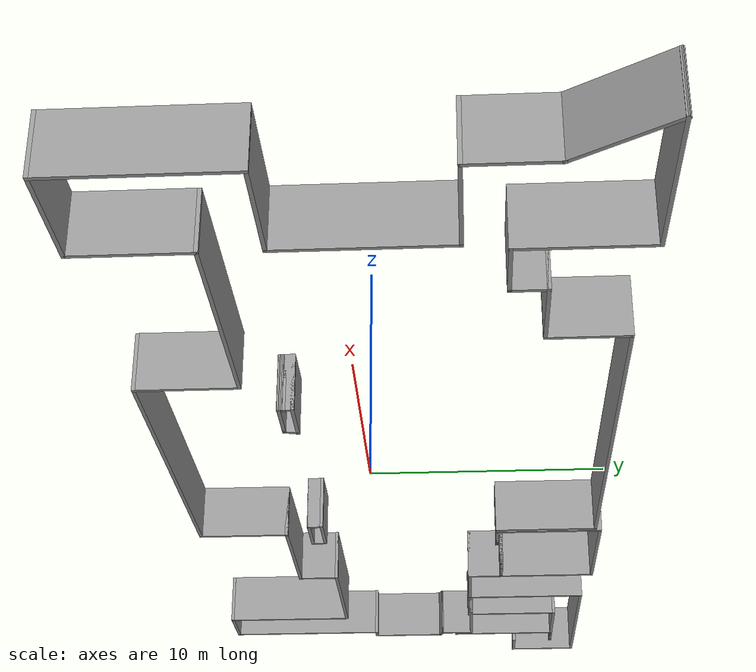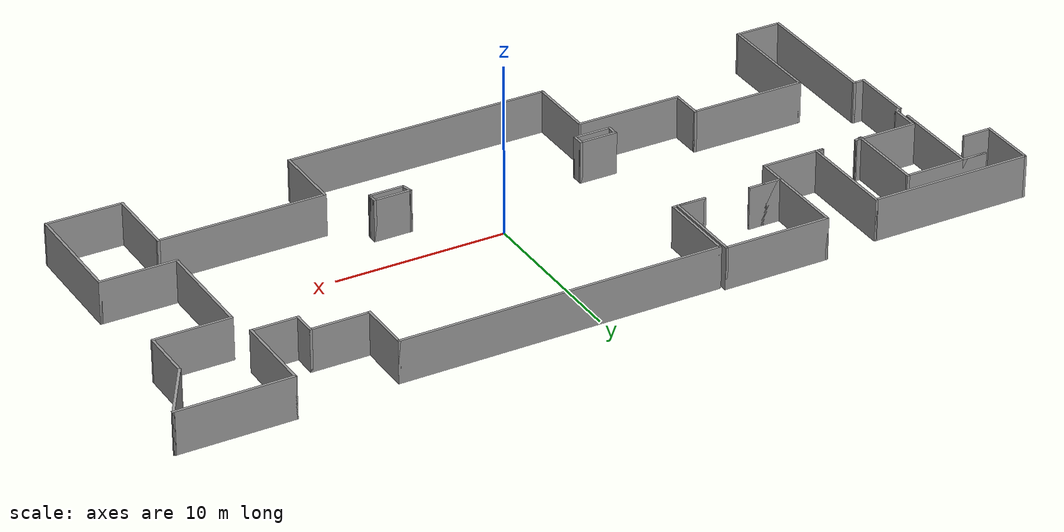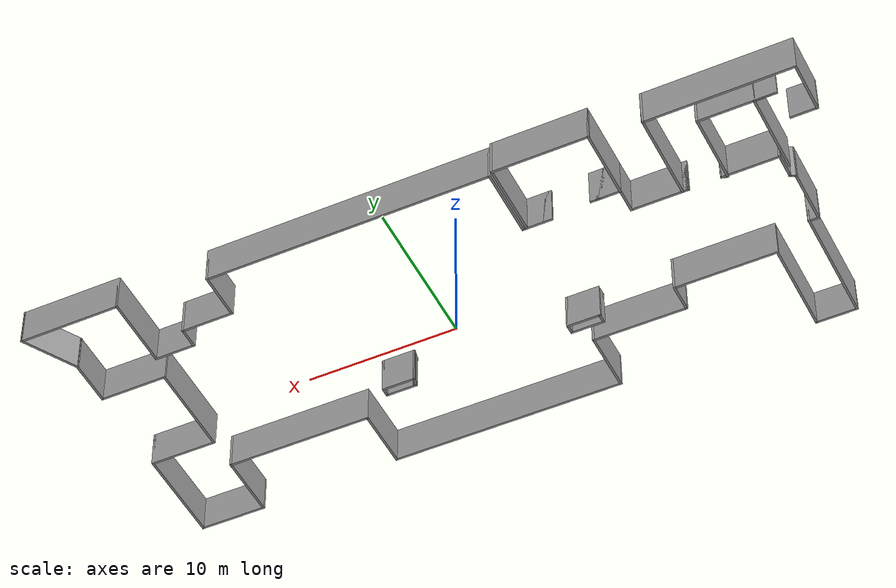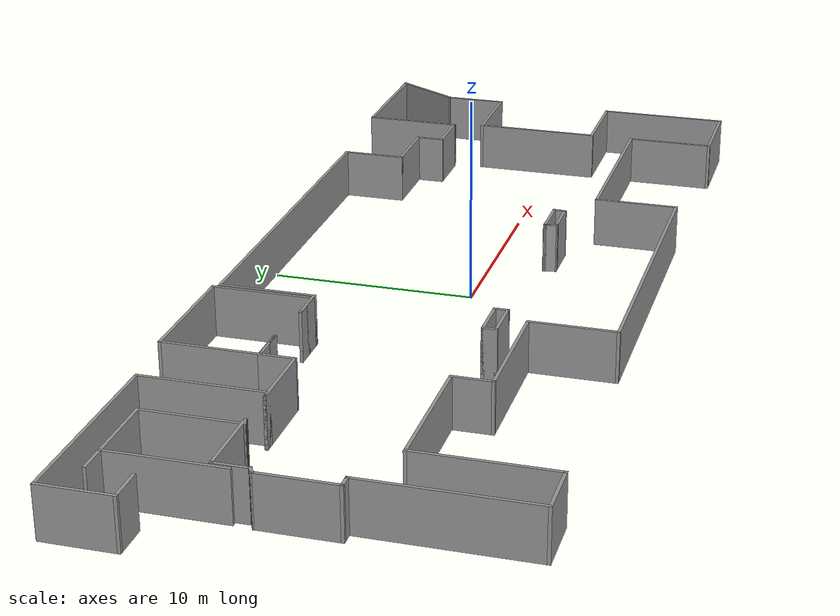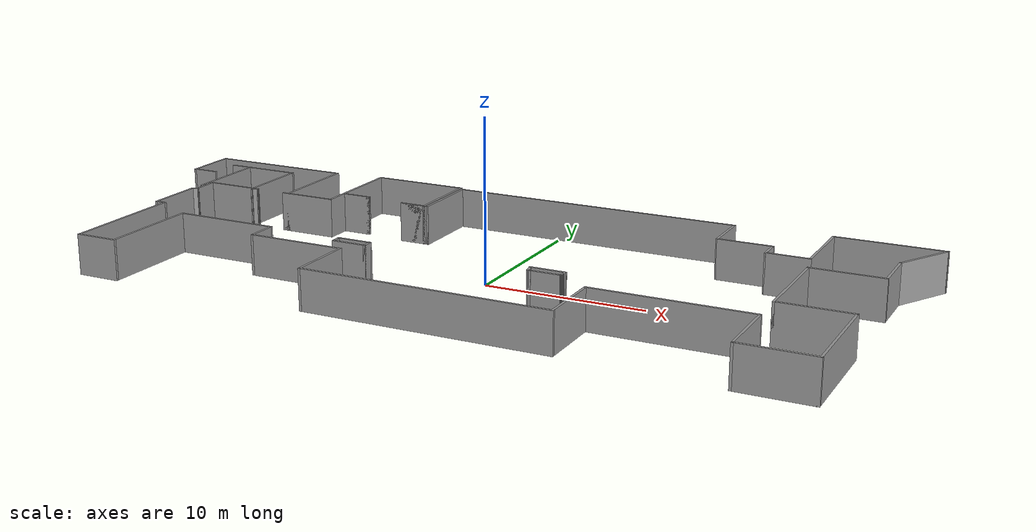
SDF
<?xml version='1.0'?>
<sdf version='1.7'>
  <model name='perch_with_columns'>
    <pose>-0.880574 0.799381 0 0 -0 0</pose>
    <link name='Wall_0'>
      <collision name='Wall_0_Collision'>
        <geometry>
          <box>
            <size>1.75 0.15 2.5</size>
          </box>
        </geometry>
        <pose>0 0 1.25 0 -0 0</pose>
      </collision>
      <visual name='Wall_0_Visual'>
        <pose>0 0 1.25 0 -0 0</pose>
        <geometry>
          <box>
            <size>1.75 0.15 2.5</size>
          </box>
        </geometry>
        <material>
          <script>
            <uri>file://media/materials/scripts/gazebo.material</uri>
            <name>Gazebo/Grey</name>
          </script>
          <ambient>1 1 1 1</ambient>
        </material>
        <meta>
          <layer>0</layer>
        </meta>
      </visual>
      <pose>-24.2637 5.90337 0 0 -0 3.14159</pose>
    </link>
    <link name='Wall_1'>
      <collision name='Wall_1_Collision'>
        <geometry>
          <box>
            <size>3.5 0.15 2.5</size>
          </box>
        </geometry>
        <pose>0 0 1.25 0 -0 0</pose>
      </collision>
      <visual name='Wall_1_Visual'>
        <pose>0 0 1.25 0 -0 0</pose>
        <geometry>
          <box>
            <size>3.5 0.15 2.5</size>
          </box>
        </geometry>
        <material>
          <script>
            <uri>file://media/materials/scripts/gazebo.material</uri>
            <name>Gazebo/Grey</name>
          </script>
          <ambient>1 1 1 1</ambient>
        </material>
        <meta>
          <layer>0</layer>
        </meta>
      </visual>
      <pose>-25.0637 7.57837 0 0 -0 1.5708</pose>
    </link>
    <link name='Wall_10'>
      <collision name='Wall_10_Collision'>
        <geometry>
          <box>
            <size>6.25 0.15 2.5</size>
          </box>
        </geometry>
        <pose>0 0 1.25 0 -0 0</pose>
      </collision>
      <visual name='Wall_10_Visual'>
        <pose>0 0 1.25 0 -0 0</pose>
        <geometry>
          <box>
            <size>6.25 0.15 2.5</size>
          </box>
        </geometry>
        <material>
          <script>
            <uri>file://media/materials/scripts/gazebo.material</uri>
            <name>Gazebo/Grey</name>
          </script>
          <ambient>1 1 1 1</ambient>
        </material>
        <meta>
          <layer>0</layer>
        </meta>
      </visual>
      <pose>-9.41372 9.60337 0 0 -0 0</pose>
    </link>
    <link name='Wall_11'>
      <collision name='Wall_11_Collision'>
        <geometry>
          <box>
            <size>5 0.15 2.5</size>
          </box>
        </geometry>
        <pose>0 0 1.25 0 -0 0</pose>
      </collision>
      <visual name='Wall_11_Visual'>
        <pose>0 0 1.25 0 -0 0</pose>
        <geometry>
          <box>
            <size>5 0.15 2.5</size>
          </box>
        </geometry>
        <material>
          <script>
            <uri>file://media/materials/scripts/gazebo.material</uri>
            <name>Gazebo/Grey</name>
          </script>
          <ambient>1 1 1 1</ambient>
        </material>
        <meta>
          <layer>0</layer>
        </meta>
      </visual>
      <pose>-6.36372 7.17837 0 0 -0 -1.5708</pose>
    </link>
    <link name='Wall_12'>
      <collision name='Wall_12_Collision'>
        <geometry>
          <box>
            <size>1.75 0.15 2.5</size>
          </box>
        </geometry>
        <pose>0 0 1.25 0 -0 0</pose>
      </collision>
      <visual name='Wall_12_Visual'>
        <pose>0 0 1.25 0 -0 0</pose>
        <geometry>
          <box>
            <size>1.75 0.15 2.5</size>
          </box>
        </geometry>
        <material>
          <script>
            <uri>file://media/materials/scripts/gazebo.material</uri>
            <name>Gazebo/Grey</name>
          </script>
          <ambient>1 1 1 1</ambient>
        </material>
        <meta>
          <layer>0</layer>
        </meta>
      </visual>
      <pose>-7.16373 4.75337 0 0 -0 3.14159</pose>
    </link>
    <link name='Wall_13'>
      <collision name='Wall_13_Collision'>
        <geometry>
          <box>
            <size>2 0.15 2.5</size>
          </box>
        </geometry>
        <pose>0 0 1.25 0 -0 0</pose>
      </collision>
      <visual name='Wall_13_Visual'>
        <pose>0 0 1.25 0 -0 0</pose>
        <geometry>
          <box>
            <size>2 0.15 2.5</size>
          </box>
        </geometry>
        <material>
          <script>
            <uri>file://media/materials/scripts/gazebo.material</uri>
            <name>Gazebo/Grey</name>
          </script>
          <ambient>1 1 1 1</ambient>
        </material>
        <meta>
          <layer>0</layer>
        </meta>
      </visual>
      <pose>-7.03873 4.75337 0 0 -0 0</pose>
    </link>
    <link name='Wall_14'>
      <collision name='Wall_14_Collision'>
        <geometry>
          <box>
            <size>4.75 0.15 2.5</size>
          </box>
        </geometry>
        <pose>0 0 1.25 0 -0 0</pose>
      </collision>
      <visual name='Wall_14_Visual'>
        <pose>0 0 1.25 0 -0 0</pose>
        <geometry>
          <box>
            <size>4.75 0.15 2.5</size>
          </box>
        </geometry>
        <material>
          <script>
            <uri>file://media/materials/scripts/gazebo.material</uri>
            <name>Gazebo/Grey</name>
          </script>
          <ambient>1 1 1 1</ambient>
        </material>
        <meta>
          <layer>0</layer>
        </meta>
      </visual>
      <pose>-6.11372 7.05337 0 0 -0 1.5708</pose>
    </link>
    <link name='Wall_15'>
      <collision name='Wall_15_Collision'>
        <geometry>
          <box>
            <size>18.75 0.15 2.5</size>
          </box>
        </geometry>
        <pose>0 0 1.25 0 -0 0</pose>
      </collision>
      <visual name='Wall_15_Visual'>
        <pose>0 0 1.25 0 -0 0</pose>
        <geometry>
          <box>
            <size>18.75 0.15 2.5</size>
          </box>
        </geometry>
        <material>
          <script>
            <uri>file://media/materials/scripts/gazebo.material</uri>
            <name>Gazebo/Grey</name>
          </script>
          <ambient>1 1 1 1</ambient>
        </material>
        <meta>
          <layer>0</layer>
        </meta>
      </visual>
      <pose>3.18628 9.35337 0 0 -0 0</pose>
    </link>
    <link name='Wall_16'>
      <collision name='Wall_16_Collision'>
        <geometry>
          <box>
            <size>3.25 0.15 2.5</size>
          </box>
        </geometry>
        <pose>0 0 1.25 0 -0 0</pose>
      </collision>
      <visual name='Wall_16_Visual'>
        <pose>0 0 1.25 0 -0 0</pose>
        <geometry>
          <box>
            <size>3.25 0.15 2.5</size>
          </box>
        </geometry>
        <material>
          <script>
            <uri>file://media/materials/scripts/gazebo.material</uri>
            <name>Gazebo/Grey</name>
          </script>
          <ambient>1 1 1 1</ambient>
        </material>
        <meta>
          <layer>0</layer>
        </meta>
      </visual>
      <pose>12.4863 7.80337 0 0 -0 -1.5708</pose>
    </link>
    <link name='Wall_17'>
      <collision name='Wall_17_Collision'>
        <geometry>
          <box>
            <size>3.5 0.15 2.5</size>
          </box>
        </geometry>
        <pose>0 0 1.25 0 -0 0</pose>
      </collision>
      <visual name='Wall_17_Visual'>
        <pose>0 0 1.25 0 -0 0</pose>
        <geometry>
          <box>
            <size>3.5 0.15 2.5</size>
          </box>
        </geometry>
        <material>
          <script>
            <uri>file://media/materials/scripts/gazebo.material</uri>
            <name>Gazebo/Grey</name>
          </script>
          <ambient>1 1 1 1</ambient>
        </material>
        <meta>
          <layer>0</layer>
        </meta>
      </visual>
      <pose>14.1613 6.25337 0 0 -0 0</pose>
    </link>
    <link name='Wall_18'>
      <collision name='Wall_18_Collision'>
        <geometry>
          <box>
            <size>1.5 0.15 2.5</size>
          </box>
        </geometry>
        <pose>0 0 1.25 0 -0 0</pose>
      </collision>
      <visual name='Wall_18_Visual'>
        <pose>0 0 1.25 0 -0 0</pose>
        <geometry>
          <box>
            <size>1.5 0.15 2.5</size>
          </box>
        </geometry>
        <material>
          <script>
            <uri>file://media/materials/scripts/gazebo.material</uri>
            <name>Gazebo/Grey</name>
          </script>
          <ambient>1 1 1 1</ambient>
        </material>
        <meta>
          <layer>0</layer>
        </meta>
      </visual>
      <pose>15.8363 5.57837 0 0 -0 -1.5708</pose>
    </link>
    <link name='Wall_19'>
      <collision name='Wall_19_Collision'>
        <geometry>
          <box>
            <size>2.75 0.15 2.5</size>
          </box>
        </geometry>
        <pose>0 0 1.25 0 -0 0</pose>
      </collision>
      <visual name='Wall_19_Visual'>
        <pose>0 0 1.25 0 -0 0</pose>
        <geometry>
          <box>
            <size>2.75 0.15 2.5</size>
          </box>
        </geometry>
        <material>
          <script>
            <uri>file://media/materials/scripts/gazebo.material</uri>
            <name>Gazebo/Grey</name>
          </script>
          <ambient>1 1 1 1</ambient>
        </material>
        <meta>
          <layer>0</layer>
        </meta>
      </visual>
      <pose>17.1363 4.90337 0 0 -0 0</pose>
    </link>
    <link name='Wall_2'>
      <collision name='Wall_2_Collision'>
        <geometry>
          <box>
            <size>9.5 0.15 2.5</size>
          </box>
        </geometry>
        <pose>0 0 1.25 0 -0 0</pose>
      </collision>
      <visual name='Wall_2_Visual'>
        <pose>0 0 1.25 0 -0 0</pose>
        <geometry>
          <box>
            <size>9.5 0.15 2.5</size>
          </box>
        </geometry>
        <material>
          <script>
            <uri>file://media/materials/scripts/gazebo.material</uri>
            <name>Gazebo/Grey</name>
          </script>
          <ambient>1 1 1 1</ambient>
        </material>
        <meta>
          <layer>0</layer>
        </meta>
      </visual>
      <pose>-20.3887 9.25337 0 0 -0 0</pose>
    </link>
    <link name='Wall_20'>
      <collision name='Wall_20_Collision'>
        <geometry>
          <box>
            <size>5 0.15 2.5</size>
          </box>
        </geometry>
        <pose>0 0 1.25 0 -0 0</pose>
      </collision>
      <visual name='Wall_20_Visual'>
        <pose>0 0 1.25 0 -0 0</pose>
        <geometry>
          <box>
            <size>5 0.15 2.5</size>
          </box>
        </geometry>
        <material>
          <script>
            <uri>file://media/materials/scripts/gazebo.material</uri>
            <name>Gazebo/Grey</name>
          </script>
          <ambient>1 1 1 1</ambient>
        </material>
        <meta>
          <layer>0</layer>
        </meta>
      </visual>
      <pose>18.4363 7.32837 0 0 -0 1.5708</pose>
    </link>
    <link name='Wall_21'>
      <collision name='Wall_21_Collision'>
        <geometry>
          <box>
            <size>6.75 0.15 2.5</size>
          </box>
        </geometry>
        <pose>0 0 1.25 0 -0 0</pose>
      </collision>
      <visual name='Wall_21_Visual'>
        <pose>0 0 1.25 0 -0 0</pose>
        <geometry>
          <box>
            <size>6.75 0.15 2.5</size>
          </box>
        </geometry>
        <material>
          <script>
            <uri>file://media/materials/scripts/gazebo.material</uri>
            <name>Gazebo/Grey</name>
          </script>
          <ambient>1 1 1 1</ambient>
        </material>
        <meta>
          <layer>0</layer>
        </meta>
      </visual>
      <pose>21.7363 9.75337 0 0 -0 0</pose>
    </link>
    <link name='Wall_22'>
      <collision name='Wall_22_Collision'>
        <geometry>
          <box>
            <size>4 0.15 2.5</size>
          </box>
        </geometry>
        <pose>0 0 1.25 0 -0 0</pose>
      </collision>
      <visual name='Wall_22_Visual'>
        <pose>0 0 1.25 0 -0 0</pose>
        <geometry>
          <box>
            <size>4 0.15 2.5</size>
          </box>
        </geometry>
        <material>
          <script>
            <uri>file://media/materials/scripts/gazebo.material</uri>
            <name>Gazebo/Grey</name>
          </script>
          <ambient>1 1 1 1</ambient>
        </material>
        <meta>
          <layer>0</layer>
        </meta>
      </visual>
      <pose>24.0738 8.08628 0 0 -0 -2.0944</pose>
    </link>
    <link name='Wall_23'>
      <collision name='Wall_23_Collision'>
        <geometry>
          <box>
            <size>3.25 0.15 2.5</size>
          </box>
        </geometry>
        <pose>0 0 1.25 0 -0 0</pose>
      </collision>
      <visual name='Wall_23_Visual'>
        <pose>0 0 1.25 0 -0 0</pose>
        <geometry>
          <box>
            <size>3.25 0.15 2.5</size>
          </box>
        </geometry>
        <material>
          <script>
            <uri>file://media/materials/scripts/gazebo.material</uri>
            <name>Gazebo/Grey</name>
          </script>
          <ambient>1 1 1 1</ambient>
        </material>
        <meta>
          <layer>0</layer>
        </meta>
      </visual>
      <pose>23.1113 4.86918 0 0 -0 -1.5708</pose>
    </link>
    <link name='Wall_24'>
      <collision name='Wall_24_Collision'>
        <geometry>
          <box>
            <size>4.5 0.15 2.5</size>
          </box>
        </geometry>
        <pose>0 0 1.25 0 -0 0</pose>
      </collision>
      <visual name='Wall_24_Visual'>
        <pose>0 0 1.25 0 -0 0</pose>
        <geometry>
          <box>
            <size>4.5 0.15 2.5</size>
          </box>
        </geometry>
        <material>
          <script>
            <uri>file://media/materials/scripts/gazebo.material</uri>
            <name>Gazebo/Grey</name>
          </script>
          <ambient>1 1 1 1</ambient>
        </material>
        <meta>
          <layer>0</layer>
        </meta>
      </visual>
      <pose>20.9363 3.31918 0 0 -0 3.14159</pose>
    </link>
    <link name='Wall_25'>
      <collision name='Wall_25_Collision'>
        <geometry>
          <box>
            <size>6.5 0.15 2.5</size>
          </box>
        </geometry>
        <pose>0 0 1.25 0 -0 0</pose>
      </collision>
      <visual name='Wall_25_Visual'>
        <pose>0 0 1.25 0 -0 0</pose>
        <geometry>
          <box>
            <size>6.5 0.15 2.5</size>
          </box>
        </geometry>
        <material>
          <script>
            <uri>file://media/materials/scripts/gazebo.material</uri>
            <name>Gazebo/Grey</name>
          </script>
          <ambient>1 1 1 1</ambient>
        </material>
        <meta>
          <layer>0</layer>
        </meta>
      </visual>
      <pose>18.7613 0.144176 0 0 -0 -1.5708</pose>
    </link>
    <link name='Wall_26'>
      <collision name='Wall_26_Collision'>
        <geometry>
          <box>
            <size>4.5 0.15 2.5</size>
          </box>
        </geometry>
        <pose>0 0 1.25 0 -0 0</pose>
      </collision>
      <visual name='Wall_26_Visual'>
        <pose>0 0 1.25 0 -0 0</pose>
        <geometry>
          <box>
            <size>4.5 0.15 2.5</size>
          </box>
        </geometry>
        <material>
          <script>
            <uri>file://media/materials/scripts/gazebo.material</uri>
            <name>Gazebo/Grey</name>
          </script>
          <ambient>1 1 1 1</ambient>
        </material>
        <meta>
          <layer>0</layer>
        </meta>
      </visual>
      <pose>20.9363 -3.03082 0 0 -0 0</pose>
    </link>
    <link name='Wall_27'>
      <collision name='Wall_27_Collision'>
        <geometry>
          <box>
            <size>6.75 0.15 2.5</size>
          </box>
        </geometry>
        <pose>0 0 1.25 0 -0 0</pose>
      </collision>
      <visual name='Wall_27_Visual'>
        <pose>0 0 1.25 0 -0 0</pose>
        <geometry>
          <box>
            <size>6.75 0.15 2.5</size>
          </box>
        </geometry>
        <material>
          <script>
            <uri>file://media/materials/scripts/gazebo.material</uri>
            <name>Gazebo/Grey</name>
          </script>
          <ambient>1 1 1 1</ambient>
        </material>
        <meta>
          <layer>0</layer>
        </meta>
      </visual>
      <pose>23.1113 -6.33082 0 0 -0 -1.5708</pose>
    </link>
    <link name='Wall_28'>
      <collision name='Wall_28_Collision'>
        <geometry>
          <box>
            <size>4.5 0.15 2.5</size>
          </box>
        </geometry>
        <pose>0 0 1.25 0 -0 0</pose>
      </collision>
      <visual name='Wall_28_Visual'>
        <pose>0 0 1.25 0 -0 0</pose>
        <geometry>
          <box>
            <size>4.5 0.15 2.5</size>
          </box>
        </geometry>
        <material>
          <script>
            <uri>file://media/materials/scripts/gazebo.material</uri>
            <name>Gazebo/Grey</name>
          </script>
          <ambient>1 1 1 1</ambient>
        </material>
        <meta>
          <layer>0</layer>
        </meta>
      </visual>
      <pose>20.9363 -9.63082 0 0 -0 3.14159</pose>
    </link>
    <link name='Wall_29'>
      <collision name='Wall_29_Collision'>
        <geometry>
          <box>
            <size>4.5 0.15 2.5</size>
          </box>
        </geometry>
        <pose>0 0 1.25 0 -0 0</pose>
      </collision>
      <visual name='Wall_29_Visual'>
        <pose>0 0 1.25 0 -0 0</pose>
        <geometry>
          <box>
            <size>4.5 0.15 2.5</size>
          </box>
        </geometry>
        <material>
          <script>
            <uri>file://media/materials/scripts/gazebo.material</uri>
            <name>Gazebo/Grey</name>
          </script>
          <ambient>1 1 1 1</ambient>
        </material>
        <meta>
          <layer>0</layer>
        </meta>
      </visual>
      <pose>18.7613 -7.45582 0 0 -0 1.5708</pose>
    </link>
    <link name='Wall_3'>
      <collision name='Wall_3_Collision'>
        <geometry>
          <box>
            <size>6 0.15 2.5</size>
          </box>
        </geometry>
        <pose>0 0 1.25 0 -0 0</pose>
      </collision>
      <visual name='Wall_3_Visual'>
        <pose>0 0 1.25 0 -0 0</pose>
        <geometry>
          <box>
            <size>6 0.15 2.5</size>
          </box>
        </geometry>
        <material>
          <script>
            <uri>file://media/materials/scripts/gazebo.material</uri>
            <name>Gazebo/Grey</name>
          </script>
          <ambient>1 1 1 1</ambient>
        </material>
        <meta>
          <layer>0</layer>
        </meta>
      </visual>
      <pose>-15.7137 6.32837 0 0 -0 -1.5708</pose>
    </link>
    <link name='Wall_30'>
      <collision name='Wall_30_Collision'>
        <geometry>
          <box>
            <size>9.75 0.15 2.5</size>
          </box>
        </geometry>
        <pose>0 0 1.25 0 -0 0</pose>
      </collision>
      <visual name='Wall_30_Visual'>
        <pose>0 0 1.25 0 -0 0</pose>
        <geometry>
          <box>
            <size>9.75 0.15 2.5</size>
          </box>
        </geometry>
        <material>
          <script>
            <uri>file://media/materials/scripts/gazebo.material</uri>
            <name>Gazebo/Grey</name>
          </script>
          <ambient>1 1 1 1</ambient>
        </material>
        <meta>
          <layer>0</layer>
        </meta>
      </visual>
      <pose>13.9613 -5.28082 0 0 -0 3.14159</pose>
    </link>
    <link name='Wall_31'>
      <collision name='Wall_31_Collision'>
        <geometry>
          <box>
            <size>4.25 0.15 2.5</size>
          </box>
        </geometry>
        <pose>0 0 1.25 0 -0 0</pose>
      </collision>
      <visual name='Wall_31_Visual'>
        <pose>0 0 1.25 0 -0 0</pose>
        <geometry>
          <box>
            <size>4.25 0.15 2.5</size>
          </box>
        </geometry>
        <material>
          <script>
            <uri>file://media/materials/scripts/gazebo.material</uri>
            <name>Gazebo/Grey</name>
          </script>
          <ambient>1 1 1 1</ambient>
        </material>
        <meta>
          <layer>0</layer>
        </meta>
      </visual>
      <pose>9.16127 -7.33082 0 0 -0 -1.5708</pose>
    </link>
    <link name='Wall_32'>
      <collision name='Wall_32_Collision'>
        <geometry>
          <box>
            <size>15.5 0.15 2.5</size>
          </box>
        </geometry>
        <pose>0 0 1.25 0 -0 0</pose>
      </collision>
      <visual name='Wall_32_Visual'>
        <pose>0 0 1.25 0 -0 0</pose>
        <geometry>
          <box>
            <size>15.5 0.15 2.5</size>
          </box>
        </geometry>
        <material>
          <script>
            <uri>file://media/materials/scripts/gazebo.material</uri>
            <name>Gazebo/Grey</name>
          </script>
          <ambient>1 1 1 1</ambient>
        </material>
        <meta>
          <layer>0</layer>
        </meta>
      </visual>
      <pose>1.48628 -9.38082 0 0 -0 3.14159</pose>
    </link>
    <link name='Wall_33'>
      <collision name='Wall_33_Collision'>
        <geometry>
          <box>
            <size>4.25 0.15 2.5</size>
          </box>
        </geometry>
        <pose>0 0 1.25 0 -0 0</pose>
      </collision>
      <visual name='Wall_33_Visual'>
        <pose>0 0 1.25 0 -0 0</pose>
        <geometry>
          <box>
            <size>4.25 0.15 2.5</size>
          </box>
        </geometry>
        <material>
          <script>
            <uri>file://media/materials/scripts/gazebo.material</uri>
            <name>Gazebo/Grey</name>
          </script>
          <ambient>1 1 1 1</ambient>
        </material>
        <meta>
          <layer>0</layer>
        </meta>
      </visual>
      <pose>-6.18872 -7.33082 0 0 -0 1.5708</pose>
    </link>
    <link name='Wall_34'>
      <collision name='Wall_34_Collision'>
        <geometry>
          <box>
            <size>6.25 0.15 2.5</size>
          </box>
        </geometry>
        <pose>0 0 1.25 0 -0 0</pose>
      </collision>
      <visual name='Wall_34_Visual'>
        <pose>0 0 1.25 0 -0 0</pose>
        <geometry>
          <box>
            <size>6.25 0.15 2.5</size>
          </box>
        </geometry>
        <material>
          <script>
            <uri>file://media/materials/scripts/gazebo.material</uri>
            <name>Gazebo/Grey</name>
          </script>
          <ambient>1 1 1 1</ambient>
        </material>
        <meta>
          <layer>0</layer>
        </meta>
      </visual>
      <pose>-9.23873 -5.28082 0 0 -0 3.14159</pose>
    </link>
    <link name='Wall_35'>
      <collision name='Wall_35_Collision'>
        <geometry>
          <box>
            <size>2 0.15 2.5</size>
          </box>
        </geometry>
        <pose>0 0 1.25 0 -0 0</pose>
      </collision>
      <visual name='Wall_35_Visual'>
        <pose>0 0 1.25 0 -0 0</pose>
        <geometry>
          <box>
            <size>2 0.15 2.5</size>
          </box>
        </geometry>
        <material>
          <script>
            <uri>file://media/materials/scripts/gazebo.material</uri>
            <name>Gazebo/Grey</name>
          </script>
          <ambient>1 1 1 1</ambient>
        </material>
        <meta>
          <layer>0</layer>
        </meta>
      </visual>
      <pose>-12.2887 -4.35582 0 0 -0 1.5708</pose>
    </link>
    <link name='Wall_36'>
      <collision name='Wall_36_Collision'>
        <geometry>
          <box>
            <size>6.75 0.15 2.5</size>
          </box>
        </geometry>
        <pose>0 0 1.25 0 -0 0</pose>
      </collision>
      <visual name='Wall_36_Visual'>
        <pose>0 0 1.25 0 -0 0</pose>
        <geometry>
          <box>
            <size>6.75 0.15 2.5</size>
          </box>
        </geometry>
        <material>
          <script>
            <uri>file://media/materials/scripts/gazebo.material</uri>
            <name>Gazebo/Grey</name>
          </script>
          <ambient>1 1 1 1</ambient>
        </material>
        <meta>
          <layer>0</layer>
        </meta>
      </visual>
      <pose>-15.5887 -3.43082 0 0 -0 3.14159</pose>
    </link>
    <link name='Wall_37'>
      <collision name='Wall_37_Collision'>
        <geometry>
          <box>
            <size>6.5 0.15 2.5</size>
          </box>
        </geometry>
        <pose>0 0 1.25 0 -0 0</pose>
      </collision>
      <visual name='Wall_37_Visual'>
        <pose>0 0 1.25 0 -0 0</pose>
        <geometry>
          <box>
            <size>6.5 0.15 2.5</size>
          </box>
        </geometry>
        <material>
          <script>
            <uri>file://media/materials/scripts/gazebo.material</uri>
            <name>Gazebo/Grey</name>
          </script>
          <ambient>1 1 1 1</ambient>
        </material>
        <meta>
          <layer>0</layer>
        </meta>
      </visual>
      <pose>-18.8887 -6.60582 0 0 -0 -1.5708</pose>
    </link>
    <link name='Wall_38'>
      <collision name='Wall_38_Collision'>
        <geometry>
          <box>
            <size>2.75 0.15 2.5</size>
          </box>
        </geometry>
        <pose>0 0 1.25 0 -0 0</pose>
      </collision>
      <visual name='Wall_38_Visual'>
        <pose>0 0 1.25 0 -0 0</pose>
        <geometry>
          <box>
            <size>2.75 0.15 2.5</size>
          </box>
        </geometry>
        <material>
          <script>
            <uri>file://media/materials/scripts/gazebo.material</uri>
            <name>Gazebo/Grey</name>
          </script>
          <ambient>1 1 1 1</ambient>
        </material>
        <meta>
          <layer>0</layer>
        </meta>
      </visual>
      <pose>-20.1887 -9.78083 0 0 -0 3.14159</pose>
    </link>
    <link name='Wall_39'>
      <collision name='Wall_39_Collision'>
        <geometry>
          <box>
            <size>8 0.15 2.5</size>
          </box>
        </geometry>
        <pose>0 0 1.25 0 -0 0</pose>
      </collision>
      <visual name='Wall_39_Visual'>
        <pose>0 0 1.25 0 -0 0</pose>
        <geometry>
          <box>
            <size>8 0.15 2.5</size>
          </box>
        </geometry>
        <material>
          <script>
            <uri>file://media/materials/scripts/gazebo.material</uri>
            <name>Gazebo/Grey</name>
          </script>
          <ambient>1 1 1 1</ambient>
        </material>
        <meta>
          <layer>0</layer>
        </meta>
      </visual>
      <pose>-21.4887 -5.85582 0 0 -0 1.5708</pose>
    </link>
    <link name='Wall_4'>
      <collision name='Wall_4_Collision'>
        <geometry>
          <box>
            <size>0.5 0.15 2.5</size>
          </box>
        </geometry>
        <pose>0 0 1.25 0 -0 0</pose>
      </collision>
      <visual name='Wall_4_Visual'>
        <pose>0 0 1.25 0 -0 0</pose>
        <geometry>
          <box>
            <size>0.5 0.15 2.5</size>
          </box>
        </geometry>
        <material>
          <script>
            <uri>file://media/materials/scripts/gazebo.material</uri>
            <name>Gazebo/Grey</name>
          </script>
          <ambient>1 1 1 1</ambient>
        </material>
        <meta>
          <layer>0</layer>
        </meta>
      </visual>
      <pose>-15.8887 3.40337 0 0 -0 3.14159</pose>
    </link>
    <link name='Wall_40'>
      <collision name='Wall_40_Collision'>
        <geometry>
          <box>
            <size>0.75 0.15 2.5</size>
          </box>
        </geometry>
        <pose>0 0 1.25 0 -0 0</pose>
      </collision>
      <visual name='Wall_40_Visual'>
        <pose>0 0 1.25 0 -0 0</pose>
        <geometry>
          <box>
            <size>0.75 0.15 2.5</size>
          </box>
        </geometry>
        <material>
          <script>
            <uri>file://media/materials/scripts/gazebo.material</uri>
            <name>Gazebo/Grey</name>
          </script>
          <ambient>1 1 1 1</ambient>
        </material>
        <meta>
          <layer>0</layer>
        </meta>
      </visual>
      <pose>-21.7887 -1.93082 0 0 -0 3.14159</pose>
    </link>
    <link name='Wall_41'>
      <collision name='Wall_41_Collision'>
        <geometry>
          <box>
            <size>3.75 0.15 2.5</size>
          </box>
        </geometry>
        <pose>0 0 1.25 0 -0 0</pose>
      </collision>
      <visual name='Wall_41_Visual'>
        <pose>0 0 1.25 0 -0 0</pose>
        <geometry>
          <box>
            <size>3.75 0.15 2.5</size>
          </box>
        </geometry>
        <material>
          <script>
            <uri>file://media/materials/scripts/gazebo.material</uri>
            <name>Gazebo/Grey</name>
          </script>
          <ambient>1 1 1 1</ambient>
        </material>
        <meta>
          <layer>0</layer>
        </meta>
      </visual>
      <pose>-22.0887 -0.130824 0 0 -0 1.5708</pose>
    </link>
    <link name='Wall_42'>
      <collision name='Wall_42_Collision'>
        <geometry>
          <box>
            <size>0.5 0.15 2.5</size>
          </box>
        </geometry>
        <pose>0 0 1.25 0 -0 0</pose>
      </collision>
      <visual name='Wall_42_Visual'>
        <pose>0 0 1.25 0 -0 0</pose>
        <geometry>
          <box>
            <size>0.5 0.15 2.5</size>
          </box>
        </geometry>
        <material>
          <script>
            <uri>file://media/materials/scripts/gazebo.material</uri>
            <name>Gazebo/Grey</name>
          </script>
          <ambient>1 1 1 1</ambient>
        </material>
        <meta>
          <layer>0</layer>
        </meta>
      </visual>
      <pose>-21.9372 1.75668 0 0 -0 0.523599</pose>
    </link>
    <link name='Wall_43'>
      <collision name='Wall_43_Collision'>
        <geometry>
          <box>
            <size>1.75 0.15 2.5</size>
          </box>
        </geometry>
        <pose>0 0 1.25 0 -0 0</pose>
      </collision>
      <visual name='Wall_43_Visual'>
        <pose>0 0 1.25 0 -0 0</pose>
        <geometry>
          <box>
            <size>1.75 0.15 2.5</size>
          </box>
        </geometry>
        <material>
          <script>
            <uri>file://media/materials/scripts/gazebo.material</uri>
            <name>Gazebo/Grey</name>
          </script>
          <ambient>1 1 1 1</ambient>
        </material>
        <meta>
          <layer>0</layer>
        </meta>
      </visual>
      <pose>-21.7856 2.64418 0 0 -0 1.5708</pose>
    </link>
    <link name='Wall_44'>
      <collision name='Wall_44_Collision'>
        <geometry>
          <box>
            <size>3.75 0.15 2.5</size>
          </box>
        </geometry>
        <pose>0 0 1.25 0 -0 0</pose>
      </collision>
      <visual name='Wall_44_Visual'>
        <pose>0 0 1.25 0 -0 0</pose>
        <geometry>
          <box>
            <size>3.75 0.15 2.5</size>
          </box>
        </geometry>
        <material>
          <script>
            <uri>file://media/materials/scripts/gazebo.material</uri>
            <name>Gazebo/Grey</name>
          </script>
          <ambient>1 1 1 1</ambient>
        </material>
        <meta>
          <layer>0</layer>
        </meta>
      </visual>
      <pose>-19.9856 3.44418 0 0 -0 0</pose>
    </link>
    <link name='Wall_45'>
      <collision name='Wall_45_Collision'>
        <geometry>
          <box>
            <size>0.5 0.15 2.5</size>
          </box>
        </geometry>
        <pose>0 0 1.25 0 -0 0</pose>
      </collision>
      <visual name='Wall_45_Visual'>
        <pose>0 0 1.25 0 -0 0</pose>
        <geometry>
          <box>
            <size>0.5 0.15 2.5</size>
          </box>
        </geometry>
        <material>
          <script>
            <uri>file://media/materials/scripts/gazebo.material</uri>
            <name>Gazebo/Grey</name>
          </script>
          <ambient>1 1 1 1</ambient>
        </material>
        <meta>
          <layer>0</layer>
        </meta>
      </visual>
      <pose>-18.3547 3.39888 0 0 -0 -2.87979</pose>
    </link>
    <link name='Wall_46'>
      <collision name='Wall_46_Collision'>
        <geometry>
          <box>
            <size>4.75 0.15 2.5</size>
          </box>
        </geometry>
        <pose>0 0 1.25 0 -0 0</pose>
      </collision>
      <visual name='Wall_46_Visual'>
        <pose>0 0 1.25 0 -0 0</pose>
        <geometry>
          <box>
            <size>4.75 0.15 2.5</size>
          </box>
        </geometry>
        <material>
          <script>
            <uri>file://media/materials/scripts/gazebo.material</uri>
            <name>Gazebo/Grey</name>
          </script>
          <ambient>1 1 1 1</ambient>
        </material>
        <meta>
          <layer>0</layer>
        </meta>
      </visual>
      <pose>-18.5237 5.65359 0 0 -0 1.5708</pose>
    </link>
    <link name='Wall_47'>
      <collision name='Wall_47_Collision'>
        <geometry>
          <box>
            <size>5 0.15 2.5</size>
          </box>
        </geometry>
        <pose>0 0 1.25 0 -0 0</pose>
      </collision>
      <visual name='Wall_47_Visual'>
        <pose>0 0 1.25 0 -0 0</pose>
        <geometry>
          <box>
            <size>5 0.15 2.5</size>
          </box>
        </geometry>
        <material>
          <script>
            <uri>file://media/materials/scripts/gazebo.material</uri>
            <name>Gazebo/Grey</name>
          </script>
          <ambient>1 1 1 1</ambient>
        </material>
        <meta>
          <layer>0</layer>
        </meta>
      </visual>
      <pose>-20.9487 7.95359 0 0 -0 3.14159</pose>
    </link>
    <link name='Wall_48'>
      <collision name='Wall_48_Collision'>
        <geometry>
          <box>
            <size>1.5 0.15 2.5</size>
          </box>
        </geometry>
        <pose>0 0 1.25 0 -0 0</pose>
      </collision>
      <visual name='Wall_48_Visual'>
        <pose>0 0 1.25 0 -0 0</pose>
        <geometry>
          <box>
            <size>1.5 0.15 2.5</size>
          </box>
        </geometry>
        <material>
          <script>
            <uri>file://media/materials/scripts/gazebo.material</uri>
            <name>Gazebo/Grey</name>
          </script>
          <ambient>1 1 1 1</ambient>
        </material>
        <meta>
          <layer>0</layer>
        </meta>
      </visual>
      <pose>-22.6987 7.95359 0 0 -0 0</pose>
    </link>
    <link name='Wall_49'>
      <collision name='Wall_49_Collision'>
        <geometry>
          <box>
            <size>5.5 0.15 2.5</size>
          </box>
        </geometry>
        <pose>0 0 1.25 0 -0 0</pose>
      </collision>
      <visual name='Wall_49_Visual'>
        <pose>0 0 1.25 0 -0 0</pose>
        <geometry>
          <box>
            <size>5.5 0.15 2.5</size>
          </box>
        </geometry>
        <material>
          <script>
            <uri>file://media/materials/scripts/gazebo.material</uri>
            <name>Gazebo/Grey</name>
          </script>
          <ambient>1 1 1 1</ambient>
        </material>
        <meta>
          <layer>0</layer>
        </meta>
      </visual>
      <pose>-22.0237 5.27859 0 0 -0 -1.5708</pose>
    </link>
    <link name='Wall_5'>
      <collision name='Wall_5_Collision'>
        <geometry>
          <box>
            <size>3.75 0.15 2.5</size>
          </box>
        </geometry>
        <pose>0 0 1.25 0 -0 0</pose>
      </collision>
      <visual name='Wall_5_Visual'>
        <pose>0 0 1.25 0 -0 0</pose>
        <geometry>
          <box>
            <size>3.75 0.15 2.5</size>
          </box>
        </geometry>
        <material>
          <script>
            <uri>file://media/materials/scripts/gazebo.material</uri>
            <name>Gazebo/Grey</name>
          </script>
          <ambient>1 1 1 1</ambient>
        </material>
        <meta>
          <layer>0</layer>
        </meta>
      </visual>
      <pose>-14.2637 3.40337 0 0 -0 0</pose>
    </link>
    <link name='Wall_51'>
      <collision name='Wall_51_Collision'>
        <geometry>
          <box>
            <size>2.25 0.15 2.5</size>
          </box>
        </geometry>
        <pose>0 0 1.25 0 -0 0</pose>
      </collision>
      <visual name='Wall_51_Visual'>
        <pose>0 0 1.25 0 -0 0</pose>
        <geometry>
          <box>
            <size>2.25 0.15 2.5</size>
          </box>
        </geometry>
        <material>
          <script>
            <uri>file://media/materials/scripts/gazebo.material</uri>
            <name>Gazebo/Grey</name>
          </script>
          <ambient>1 1 1 1</ambient>
        </material>
        <meta>
          <layer>0</layer>
        </meta>
      </visual>
      <pose>-6.31241 -4.12961 0 0 -0 0</pose>
    </link>
    <link name='Wall_52'>
      <collision name='Wall_52_Collision'>
        <geometry>
          <box>
            <size>0.75 0.15 2.5</size>
          </box>
        </geometry>
        <pose>0 0 1.25 0 -0 0</pose>
      </collision>
      <visual name='Wall_52_Visual'>
        <pose>0 0 1.25 0 -0 0</pose>
        <geometry>
          <box>
            <size>0.75 0.15 2.5</size>
          </box>
        </geometry>
        <material>
          <script>
            <uri>file://media/materials/scripts/gazebo.material</uri>
            <name>Gazebo/Grey</name>
          </script>
          <ambient>1 1 1 1</ambient>
        </material>
        <meta>
          <layer>0</layer>
        </meta>
      </visual>
      <pose>-5.26241 -3.82961 0 0 -0 1.5708</pose>
    </link>
    <link name='Wall_53'>
      <collision name='Wall_53_Collision'>
        <geometry>
          <box>
            <size>2.25 0.15 2.5</size>
          </box>
        </geometry>
        <pose>0 0 1.25 0 -0 0</pose>
      </collision>
      <visual name='Wall_53_Visual'>
        <pose>0 0 1.25 0 -0 0</pose>
        <geometry>
          <box>
            <size>2.25 0.15 2.5</size>
          </box>
        </geometry>
        <material>
          <script>
            <uri>file://media/materials/scripts/gazebo.material</uri>
            <name>Gazebo/Grey</name>
          </script>
          <ambient>1 1 1 1</ambient>
        </material>
        <meta>
          <layer>0</layer>
        </meta>
      </visual>
      <pose>-6.31241 -3.52961 0 0 -0 3.14159</pose>
    </link>
    <link name='Wall_54'>
      <collision name='Wall_54_Collision'>
        <geometry>
          <box>
            <size>0.75 0.15 2.5</size>
          </box>
        </geometry>
        <pose>0 0 1.25 0 -0 0</pose>
      </collision>
      <visual name='Wall_54_Visual'>
        <pose>0 0 1.25 0 -0 0</pose>
        <geometry>
          <box>
            <size>0.75 0.15 2.5</size>
          </box>
        </geometry>
        <material>
          <script>
            <uri>file://media/materials/scripts/gazebo.material</uri>
            <name>Gazebo/Grey</name>
          </script>
          <ambient>1 1 1 1</ambient>
        </material>
        <meta>
          <layer>0</layer>
        </meta>
      </visual>
      <pose>-7.36241 -3.82961 0 0 -0 -1.5708</pose>
    </link>
    <link name='Wall_56'>
      <collision name='Wall_56_Collision'>
        <geometry>
          <box>
            <size>2.25 0.15 2.5</size>
          </box>
        </geometry>
        <pose>0 0 1.25 0 -0 0</pose>
      </collision>
      <visual name='Wall_56_Visual'>
        <pose>0 0 1.25 0 -0 0</pose>
        <geometry>
          <box>
            <size>2.25 0.15 2.5</size>
          </box>
        </geometry>
        <material>
          <script>
            <uri>file://media/materials/scripts/gazebo.material</uri>
            <name>Gazebo/Grey</name>
          </script>
          <ambient>1 1 1 1</ambient>
        </material>
        <meta>
          <layer>0</layer>
        </meta>
      </visual>
      <pose>6.10746 -3.48232 0 0 -0 0</pose>
    </link>
    <link name='Wall_57'>
      <collision name='Wall_57_Collision'>
        <geometry>
          <box>
            <size>0.5 0.15 2.5</size>
          </box>
        </geometry>
        <pose>0 0 1.25 0 -0 0</pose>
      </collision>
      <visual name='Wall_57_Visual'>
        <pose>0 0 1.25 0 -0 0</pose>
        <geometry>
          <box>
            <size>0.5 0.15 2.5</size>
          </box>
        </geometry>
        <material>
          <script>
            <uri>file://media/materials/scripts/gazebo.material</uri>
            <name>Gazebo/Grey</name>
          </script>
          <ambient>1 1 1 1</ambient>
        </material>
        <meta>
          <layer>0</layer>
        </meta>
      </visual>
      <pose>7.15746 -3.65732 0 0 -0 -1.5708</pose>
    </link>
    <link name='Wall_58'>
      <collision name='Wall_58_Collision'>
        <geometry>
          <box>
            <size>0.25 0.15 2.5</size>
          </box>
        </geometry>
        <pose>0 0 1.25 0 -0 0</pose>
      </collision>
      <visual name='Wall_58_Visual'>
        <pose>0 0 1.25 0 -0 0</pose>
        <geometry>
          <box>
            <size>0.25 0.15 2.5</size>
          </box>
        </geometry>
        <material>
          <script>
            <uri>file://media/materials/scripts/gazebo.material</uri>
            <name>Gazebo/Grey</name>
          </script>
          <ambient>1 1 1 1</ambient>
        </material>
        <meta>
          <layer>0</layer>
        </meta>
      </visual>
      <pose>7.15746 -3.88232 0 0 -0 -1.5708</pose>
    </link>
    <link name='Wall_59'>
      <collision name='Wall_59_Collision'>
        <geometry>
          <box>
            <size>0.25 0.15 2.5</size>
          </box>
        </geometry>
        <pose>0 0 1.25 0 -0 0</pose>
      </collision>
      <visual name='Wall_59_Visual'>
        <pose>0 0 1.25 0 -0 0</pose>
        <geometry>
          <box>
            <size>0.25 0.15 2.5</size>
          </box>
        </geometry>
        <material>
          <script>
            <uri>file://media/materials/scripts/gazebo.material</uri>
            <name>Gazebo/Grey</name>
          </script>
          <ambient>1 1 1 1</ambient>
        </material>
        <meta>
          <layer>0</layer>
        </meta>
      </visual>
      <pose>7.14452 -3.98062 0 0 -0 -1.8326</pose>
    </link>
    <link name='Wall_6'>
      <collision name='Wall_6_Collision'>
        <geometry>
          <box>
            <size>1.75 0.15 2.5</size>
          </box>
        </geometry>
        <pose>0 0 1.25 0 -0 0</pose>
      </collision>
      <visual name='Wall_6_Visual'>
        <pose>0 0 1.25 0 -0 0</pose>
        <geometry>
          <box>
            <size>1.75 0.15 2.5</size>
          </box>
        </geometry>
        <material>
          <script>
            <uri>file://media/materials/scripts/gazebo.material</uri>
            <name>Gazebo/Grey</name>
          </script>
          <ambient>1 1 1 1</ambient>
        </material>
        <meta>
          <layer>0</layer>
        </meta>
      </visual>
      <pose>-12.4637 4.20337 0 0 -0 1.5708</pose>
    </link>
    <link name='Wall_60'>
      <collision name='Wall_60_Collision'>
        <geometry>
          <box>
            <size>2 0.15 2.5</size>
          </box>
        </geometry>
        <pose>0 0 1.25 0 -0 0</pose>
      </collision>
      <visual name='Wall_60_Visual'>
        <pose>0 0 1.25 0 -0 0</pose>
        <geometry>
          <box>
            <size>2 0.15 2.5</size>
          </box>
        </geometry>
        <material>
          <script>
            <uri>file://media/materials/scripts/gazebo.material</uri>
            <name>Gazebo/Grey</name>
          </script>
          <ambient>1 1 1 1</ambient>
        </material>
        <meta>
          <layer>0</layer>
        </meta>
      </visual>
      <pose>6.20657 -4.02891 0 0 -0 3.14159</pose>
    </link>
    <link name='Wall_61'>
      <collision name='Wall_61_Collision'>
        <geometry>
          <box>
            <size>0.15 0.15 2.5</size>
          </box>
        </geometry>
        <pose>0 0 1.25 0 -0 0</pose>
      </collision>
      <visual name='Wall_61_Visual'>
        <pose>0 0 1.25 0 -0 0</pose>
        <geometry>
          <box>
            <size>0.15 0.15 2.5</size>
          </box>
        </geometry>
        <material>
          <script>
            <uri>file://media/materials/scripts/gazebo.material</uri>
            <name>Gazebo/Grey</name>
          </script>
          <ambient>1 1 1 1</ambient>
        </material>
        <meta>
          <layer>0</layer>
        </meta>
      </visual>
      <pose>5.28158 -4.02891 0 0 -0 0</pose>
    </link>
    <link name='Wall_62'>
      <collision name='Wall_62_Collision'>
        <geometry>
          <box>
            <size>0.25 0.15 2.5</size>
          </box>
        </geometry>
        <pose>0 0 1.25 0 -0 0</pose>
      </collision>
      <visual name='Wall_62_Visual'>
        <pose>0 0 1.25 0 -0 0</pose>
        <geometry>
          <box>
            <size>0.25 0.15 2.5</size>
          </box>
        </geometry>
        <material>
          <script>
            <uri>file://media/materials/scripts/gazebo.material</uri>
            <name>Gazebo/Grey</name>
          </script>
          <ambient>1 1 1 1</ambient>
        </material>
        <meta>
          <layer>0</layer>
        </meta>
      </visual>
      <pose>5.23158 -4.02891 0 0 -0 3.14159</pose>
    </link>
    <link name='Wall_63'>
      <collision name='Wall_63_Collision'>
        <geometry>
          <box>
            <size>0.710508 0.15 2.5</size>
          </box>
        </geometry>
        <pose>0 0 1.25 0 -0 0</pose>
      </collision>
      <visual name='Wall_63_Visual'>
        <pose>0 0 1.25 0 -0 0</pose>
        <geometry>
          <box>
            <size>0.710508 0.15 2.5</size>
          </box>
        </geometry>
        <material>
          <script>
            <uri>file://media/materials/scripts/gazebo.material</uri>
            <name>Gazebo/Grey</name>
          </script>
          <ambient>1 1 1 1</ambient>
        </material>
        <meta>
          <layer>0</layer>
        </meta>
      </visual>
      <pose>5.11952 -3.75562 0 0 -0 1.79409</pose>
    </link>
    <link name='Wall_7'>
      <collision name='Wall_7_Collision'>
        <geometry>
          <box>
            <size>2 0.15 2.5</size>
          </box>
        </geometry>
        <pose>0 0 1.25 0 -0 0</pose>
      </collision>
      <visual name='Wall_7_Visual'>
        <pose>0 0 1.25 0 -0 0</pose>
        <geometry>
          <box>
            <size>2 0.15 2.5</size>
          </box>
        </geometry>
        <material>
          <script>
            <uri>file://media/materials/scripts/gazebo.material</uri>
            <name>Gazebo/Grey</name>
          </script>
          <ambient>1 1 1 1</ambient>
        </material>
        <meta>
          <layer>0</layer>
        </meta>
      </visual>
      <pose>-11.5387 5.00337 0 0 -0 0</pose>
    </link>
    <link name='Wall_8'>
      <collision name='Wall_8_Collision'>
        <geometry>
          <box>
            <size>2 0.15 2.5</size>
          </box>
        </geometry>
        <pose>0 0 1.25 0 -0 0</pose>
      </collision>
      <visual name='Wall_8_Visual'>
        <pose>0 0 1.25 0 -0 0</pose>
        <geometry>
          <box>
            <size>2 0.15 2.5</size>
          </box>
        </geometry>
        <material>
          <script>
            <uri>file://media/materials/scripts/gazebo.material</uri>
            <name>Gazebo/Grey</name>
          </script>
          <ambient>1 1 1 1</ambient>
        </material>
        <meta>
          <layer>0</layer>
        </meta>
      </visual>
      <pose>-11.5387 5.00337 0 0 -0 3.14159</pose>
    </link>
    <link name='Wall_9'>
      <collision name='Wall_9_Collision'>
        <geometry>
          <box>
            <size>4.75 0.15 2.5</size>
          </box>
        </geometry>
        <pose>0 0 1.25 0 -0 0</pose>
      </collision>
      <visual name='Wall_9_Visual'>
        <pose>0 0 1.25 0 -0 0</pose>
        <geometry>
          <box>
            <size>4.75 0.15 2.5</size>
          </box>
        </geometry>
        <material>
          <script>
            <uri>file://media/materials/scripts/gazebo.material</uri>
            <name>Gazebo/Grey</name>
          </script>
          <ambient>1 1 1 1</ambient>
        </material>
        <meta>
          <layer>0</layer>
        </meta>
      </visual>
      <pose>-12.4637 7.30337 0 0 -0 1.5708</pose>
    </link>
    <static>1</static>
  </model>
</sdf>
